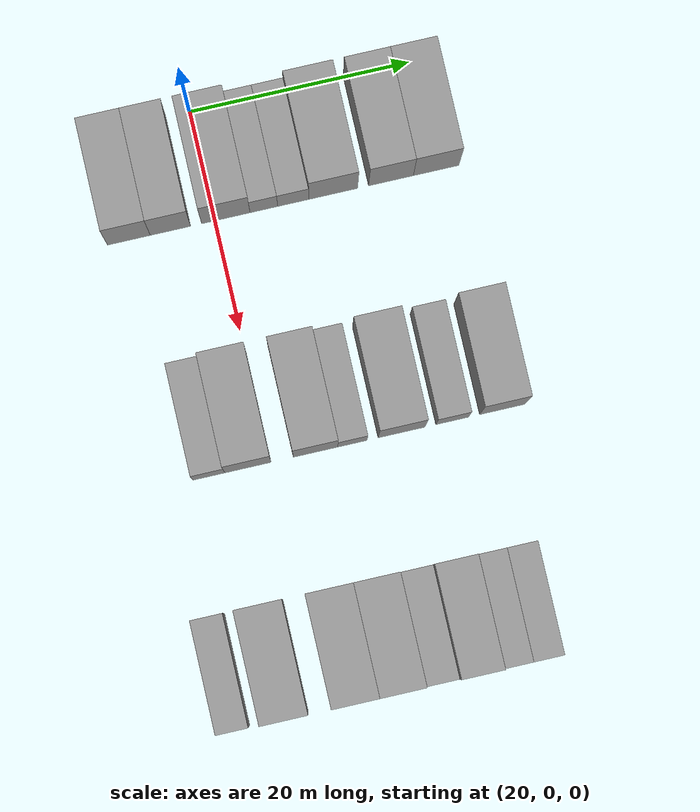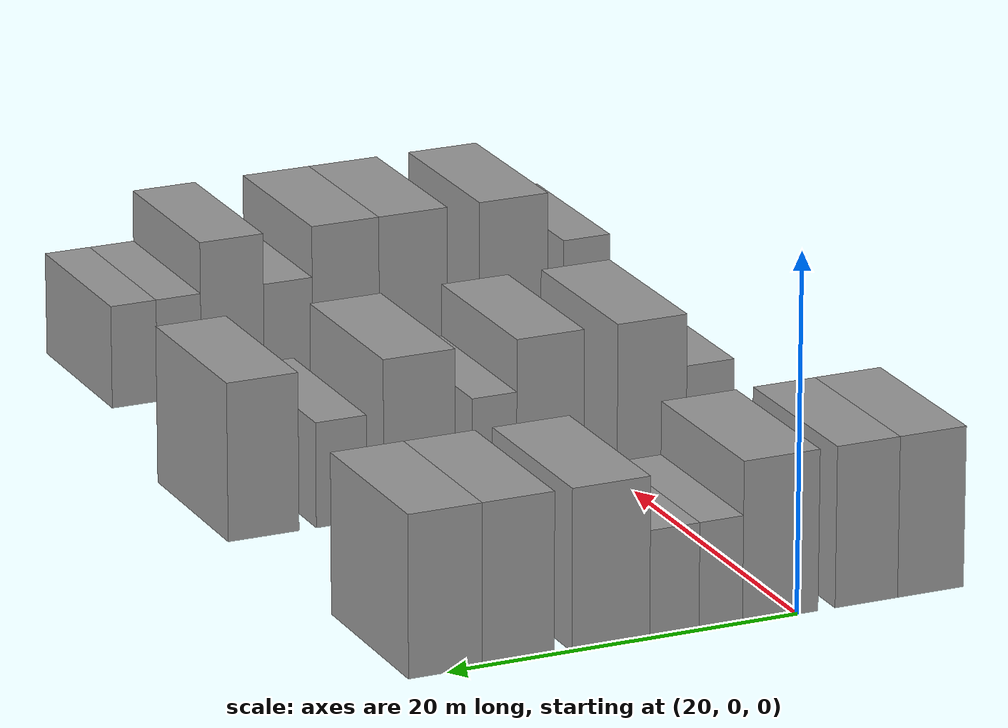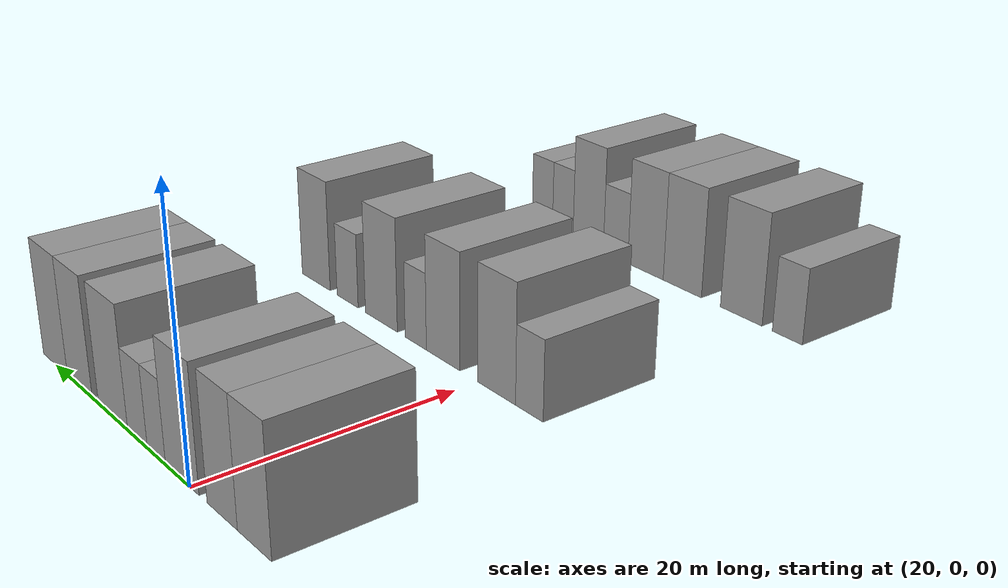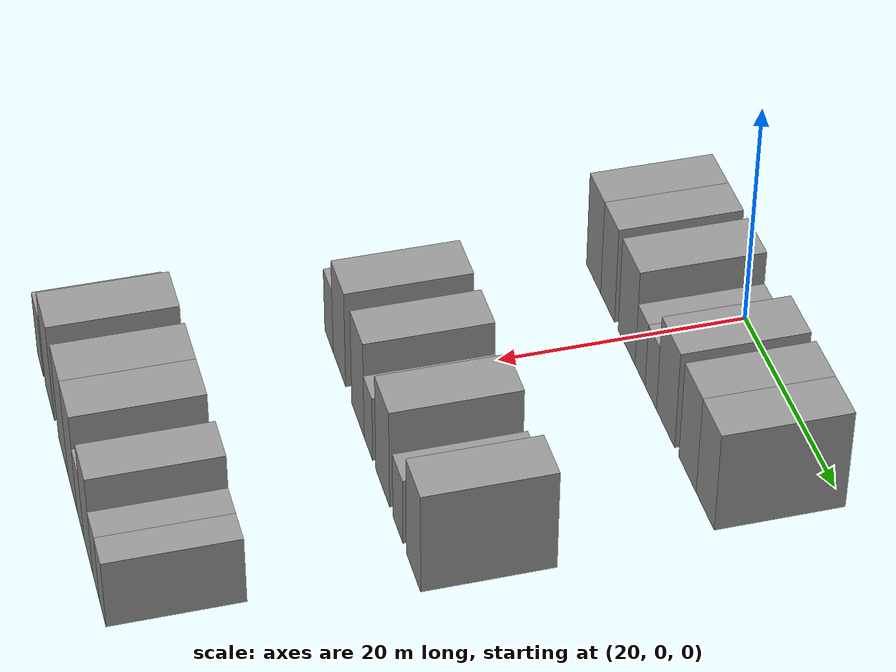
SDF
<sdf version="1.6">
 <world name="default">
  <model name="building_63">
   <static>1</static>
   <pose>25.0000 -7.7786 0 0.000000 0.000000 0.000000</pose>
   <link name="link">
    <pose>0 0 4.50 0 0 0</pose>
    <collision name="collision"><geometry><box><size>10.0000 3.8778 9.0000</size></box></geometry></collision>
    <visual name="visual">
     <cast_shadows>0</cast_shadows>
     <geometry><box><size>10.0000 3.8778 9.0000</size></box></geometry>
     <material>
      <script>
       <uri>model://grey_wall/materials/scripts</uri>
       <uri>model://grey_wall/materials/textures</uri>
       <name>vrc/grey_wall</name>
      </script>
     </material>
    </visual>
   </link>
  </model>
  <model name="building_64">
   <static>1</static>
   <pose>25.0000 -4.0102 0 0.000000 0.000000 0.000000</pose>
   <link name="link">
    <pose>0 0 4.50 0 0 0</pose>
    <collision name="collision"><geometry><box><size>10.0000 3.6590 9.0000</size></box></geometry></collision>
    <visual name="visual">
     <cast_shadows>0</cast_shadows>
     <geometry><box><size>10.0000 3.6590 9.0000</size></box></geometry>
     <material>
      <script>
       <uri>model://grey_wall/materials/scripts</uri>
       <uri>model://grey_wall/materials/textures</uri>
       <name>vrc/grey_wall</name>
      </script>
     </material>
    </visual>
   </link>
  </model>
  <model name="building_65">
   <static>1</static>
   <pose>25.0000 1.0121 0 0.000000 0.000000 0.000000</pose>
   <link name="link">
    <pose>0 0 4.50 0 0 0</pose>
    <collision name="collision"><geometry><box><size>10.0000 4.3856 9.0000</size></box></geometry></collision>
    <visual name="visual">
     <cast_shadows>0</cast_shadows>
     <geometry><box><size>10.0000 4.3856 9.0000</size></box></geometry>
     <material>
      <script>
       <uri>model://grey_wall/materials/scripts</uri>
       <uri>model://grey_wall/materials/textures</uri>
       <name>vrc/grey_wall</name>
      </script>
     </material>
    </visual>
   </link>
  </model>
  <model name="building_66">
   <static>1</static>
   <pose>25.0000 4.4608 0 0.000000 0.000000 0.000000</pose>
   <link name="link">
    <pose>0 0 3.00 0 0 0</pose>
    <collision name="collision"><geometry><box><size>10.0000 2.5119 6.0000</size></box></geometry></collision>
    <visual name="visual">
     <cast_shadows>0</cast_shadows>
     <geometry><box><size>10.0000 2.5119 6.0000</size></box></geometry>
     <material>
      <script>
       <uri>model://grey_wall/materials/scripts</uri>
       <uri>model://grey_wall/materials/textures</uri>
       <name>vrc/grey_wall</name>
      </script>
     </material>
    </visual>
   </link>
  </model>
  <model name="building_67">
   <static>1</static>
   <pose>25.0000 7.1323 0 0.000000 0.000000 0.000000</pose>
   <link name="link">
    <pose>0 0 3.00 0 0 0</pose>
    <collision name="collision"><geometry><box><size>10.0000 2.8311 6.0000</size></box></geometry></collision>
    <visual name="visual">
     <cast_shadows>0</cast_shadows>
     <geometry><box><size>10.0000 2.8311 6.0000</size></box></geometry>
     <material>
      <script>
       <uri>model://grey_wall/materials/scripts</uri>
       <uri>model://grey_wall/materials/textures</uri>
       <name>vrc/grey_wall</name>
      </script>
     </material>
    </visual>
   </link>
  </model>
  <model name="building_68">
   <static>1</static>
   <pose>25.0000 10.7667 0 0.000000 0.000000 0.000000</pose>
   <link name="link">
    <pose>0 0 4.50 0 0 0</pose>
    <collision name="collision"><geometry><box><size>10.0000 4.4375 9.0000</size></box></geometry></collision>
    <visual name="visual">
     <cast_shadows>0</cast_shadows>
     <geometry><box><size>10.0000 4.4375 9.0000</size></box></geometry>
     <material>
      <script>
       <uri>model://grey_wall/materials/scripts</uri>
       <uri>model://grey_wall/materials/textures</uri>
       <name>vrc/grey_wall</name>
      </script>
     </material>
    </visual>
   </link>
  </model>
  <model name="building_69">
   <static>1</static>
   <pose>25.0000 16.0203 0 0.000000 0.000000 0.000000</pose>
   <link name="link">
    <pose>0 0 4.50 0 0 0</pose>
    <collision name="collision"><geometry><box><size>10.0000 4.0698 9.0000</size></box></geometry></collision>
    <visual name="visual">
     <cast_shadows>0</cast_shadows>
     <geometry><box><size>10.0000 4.0698 9.0000</size></box></geometry>
     <material>
      <script>
       <uri>model://grey_wall/materials/scripts</uri>
       <uri>model://grey_wall/materials/textures</uri>
       <name>vrc/grey_wall</name>
      </script>
     </material>
    </visual>
   </link>
  </model>
  <model name="building_70">
   <static>1</static>
   <pose>25.0000 20.1271 0 0.000000 0.000000 0.000000</pose>
   <link name="link">
    <pose>0 0 4.50 0 0 0</pose>
    <collision name="collision"><geometry><box><size>10.0000 4.1437 9.0000</size></box></geometry></collision>
    <visual name="visual">
     <cast_shadows>0</cast_shadows>
     <geometry><box><size>10.0000 4.1437 9.0000</size></box></geometry>
     <material>
      <script>
       <uri>model://grey_wall/materials/scripts</uri>
       <uri>model://grey_wall/materials/textures</uri>
       <name>vrc/grey_wall</name>
      </script>
     </material>
    </visual>
   </link>
  </model>
  <model name="building_186">
   <static>1</static>
   <pose>47.0000 -5.4801 0 0.000000 0.000000 0.000000</pose>
   <link name="link">
    <pose>0 0 3.00 0 0 0</pose>
    <collision name="collision"><geometry><box><size>10.0000 2.8677 6.0000</size></box></geometry></collision>
    <visual name="visual">
     <cast_shadows>0</cast_shadows>
     <geometry><box><size>10.0000 2.8677 6.0000</size></box></geometry>
     <material>
      <script>
       <uri>model://grey_wall/materials/scripts</uri>
       <uri>model://grey_wall/materials/textures</uri>
       <name>vrc/grey_wall</name>
      </script>
     </material>
    </visual>
   </link>
  </model>
  <model name="building_187">
   <static>1</static>
   <pose>47.0000 -1.9641 0 0.000000 0.000000 0.000000</pose>
   <link name="link">
    <pose>0 0 4.50 0 0 0</pose>
    <collision name="collision"><geometry><box><size>10.0000 4.1644 9.0000</size></box></geometry></collision>
    <visual name="visual">
     <cast_shadows>0</cast_shadows>
     <geometry><box><size>10.0000 4.1644 9.0000</size></box></geometry>
     <material>
      <script>
       <uri>model://grey_wall/materials/scripts</uri>
       <uri>model://grey_wall/materials/textures</uri>
       <name>vrc/grey_wall</name>
      </script>
     </material>
    </visual>
   </link>
  </model>
  <model name="building_188">
   <static>1</static>
   <pose>47.0000 4.1217 0 0.000000 0.000000 0.000000</pose>
   <link name="link">
    <pose>0 0 4.50 0 0 0</pose>
    <collision name="collision"><geometry><box><size>10.0000 4.0072 9.0000</size></box></geometry></collision>
    <visual name="visual">
     <cast_shadows>0</cast_shadows>
     <geometry><box><size>10.0000 4.0072 9.0000</size></box></geometry>
     <material>
      <script>
       <uri>model://grey_wall/materials/scripts</uri>
       <uri>model://grey_wall/materials/textures</uri>
       <name>vrc/grey_wall</name>
      </script>
     </material>
    </visual>
   </link>
  </model>
  <model name="building_189">
   <static>1</static>
   <pose>47.0000 7.4444 0 0.000000 0.000000 0.000000</pose>
   <link name="link">
    <pose>0 0 3.00 0 0 0</pose>
    <collision name="collision"><geometry><box><size>10.0000 2.6383 6.0000</size></box></geometry></collision>
    <visual name="visual">
     <cast_shadows>0</cast_shadows>
     <geometry><box><size>10.0000 2.6383 6.0000</size></box></geometry>
     <material>
      <script>
       <uri>model://grey_wall/materials/scripts</uri>
       <uri>model://grey_wall/materials/textures</uri>
       <name>vrc/grey_wall</name>
      </script>
     </material>
    </visual>
   </link>
  </model>
  <model name="building_190">
   <static>1</static>
   <pose>47.0000 11.8732 0 0.000000 0.000000 0.000000</pose>
   <link name="link">
    <pose>0 0 4.50 0 0 0</pose>
    <collision name="collision"><geometry><box><size>10.0000 4.2192 9.0000</size></box></geometry></collision>
    <visual name="visual">
     <cast_shadows>0</cast_shadows>
     <geometry><box><size>10.0000 4.2192 9.0000</size></box></geometry>
     <material>
      <script>
       <uri>model://grey_wall/materials/scripts</uri>
       <uri>model://grey_wall/materials/textures</uri>
       <name>vrc/grey_wall</name>
      </script>
     </material>
    </visual>
   </link>
  </model>
  <model name="building_191">
   <static>1</static>
   <pose>47.0000 16.4602 0 0.000000 0.000000 0.000000</pose>
   <link name="link">
    <pose>0 0 3.00 0 0 0</pose>
    <collision name="collision"><geometry><box><size>10.0000 2.9548 6.0000</size></box></geometry></collision>
    <visual name="visual">
     <cast_shadows>0</cast_shadows>
     <geometry><box><size>10.0000 2.9548 6.0000</size></box></geometry>
     <material>
      <script>
       <uri>model://grey_wall/materials/scripts</uri>
       <uri>model://grey_wall/materials/textures</uri>
       <name>vrc/grey_wall</name>
      </script>
     </material>
    </visual>
   </link>
  </model>
  <model name="building_192">
   <static>1</static>
   <pose>47.0000 20.9953 0 0.000000 0.000000 0.000000</pose>
   <link name="link">
    <pose>0 0 4.50 0 0 0</pose>
    <collision name="collision"><geometry><box><size>10.0000 4.1156 9.0000</size></box></geometry></collision>
    <visual name="visual">
     <cast_shadows>0</cast_shadows>
     <geometry><box><size>10.0000 4.1156 9.0000</size></box></geometry>
     <material>
      <script>
       <uri>model://grey_wall/materials/scripts</uri>
       <uri>model://grey_wall/materials/textures</uri>
       <name>vrc/grey_wall</name>
      </script>
     </material>
    </visual>
   </link>
  </model>
  <model name="building_300">
   <static>1</static>
   <pose>69.0000 -8.2397 0 0.000000 0.000000 0.000000</pose>
   <link name="link">
    <pose>0 0 3.00 0 0 0</pose>
    <collision name="collision"><geometry><box><size>10.0000 2.8853 6.0000</size></box></geometry></collision>
    <visual name="visual">
     <cast_shadows>0</cast_shadows>
     <geometry><box><size>10.0000 2.8853 6.0000</size></box></geometry>
     <material>
      <script>
       <uri>model://grey_wall/materials/scripts</uri>
       <uri>model://grey_wall/materials/textures</uri>
       <name>vrc/grey_wall</name>
      </script>
     </material>
    </visual>
   </link>
  </model>
  <model name="building_301">
   <static>1</static>
   <pose>69.0000 -3.6738 0 0.000000 0.000000 0.000000</pose>
   <link name="link">
    <pose>0 0 4.50 0 0 0</pose>
    <collision name="collision"><geometry><box><size>10.0000 4.2464 9.0000</size></box></geometry></collision>
    <visual name="visual">
     <cast_shadows>0</cast_shadows>
     <geometry><box><size>10.0000 4.2464 9.0000</size></box></geometry>
     <material>
      <script>
       <uri>model://grey_wall/materials/scripts</uri>
       <uri>model://grey_wall/materials/textures</uri>
       <name>vrc/grey_wall</name>
      </script>
     </material>
    </visual>
   </link>
  </model>
  <model name="building_302">
   <static>1</static>
   <pose>69.0000 2.5565 0 0.000000 0.000000 0.000000</pose>
   <link name="link">
    <pose>0 0 4.50 0 0 0</pose>
    <collision name="collision"><geometry><box><size>10.0000 4.2143 9.0000</size></box></geometry></collision>
    <visual name="visual">
     <cast_shadows>0</cast_shadows>
     <geometry><box><size>10.0000 4.2143 9.0000</size></box></geometry>
     <material>
      <script>
       <uri>model://grey_wall/materials/scripts</uri>
       <uri>model://grey_wall/materials/textures</uri>
       <name>vrc/grey_wall</name>
      </script>
     </material>
    </visual>
   </link>
  </model>
  <model name="building_303">
   <static>1</static>
   <pose>69.0000 6.7130 0 0.000000 0.000000 0.000000</pose>
   <link name="link">
    <pose>0 0 4.50 0 0 0</pose>
    <collision name="collision"><geometry><box><size>10.0000 4.0987 9.0000</size></box></geometry></collision>
    <visual name="visual">
     <cast_shadows>0</cast_shadows>
     <geometry><box><size>10.0000 4.0987 9.0000</size></box></geometry>
     <material>
      <script>
       <uri>model://grey_wall/materials/scripts</uri>
       <uri>model://grey_wall/materials/textures</uri>
       <name>vrc/grey_wall</name>
      </script>
     </material>
    </visual>
   </link>
  </model>
  <model name="building_304">
   <static>1</static>
   <pose>69.0000 10.2440 0 0.000000 0.000000 0.000000</pose>
   <link name="link">
    <pose>0 0 3.00 0 0 0</pose>
    <collision name="collision"><geometry><box><size>10.0000 2.9633 6.0000</size></box></geometry></collision>
    <visual name="visual">
     <cast_shadows>0</cast_shadows>
     <geometry><box><size>10.0000 2.9633 6.0000</size></box></geometry>
     <material>
      <script>
       <uri>model://grey_wall/materials/scripts</uri>
       <uri>model://grey_wall/materials/textures</uri>
       <name>vrc/grey_wall</name>
      </script>
     </material>
    </visual>
   </link>
  </model>
  <model name="building_305">
   <static>1</static>
   <pose>69.0000 13.6314 0 0.000000 0.000000 0.000000</pose>
   <link name="link">
    <pose>0 0 4.50 0 0 0</pose>
    <collision name="collision"><geometry><box><size>10.0000 3.8116 9.0000</size></box></geometry></collision>
    <visual name="visual">
     <cast_shadows>0</cast_shadows>
     <geometry><box><size>10.0000 3.8116 9.0000</size></box></geometry>
     <material>
      <script>
       <uri>model://grey_wall/materials/scripts</uri>
       <uri>model://grey_wall/materials/textures</uri>
       <name>vrc/grey_wall</name>
      </script>
     </material>
    </visual>
   </link>
  </model>
  <model name="building_306">
   <static>1</static>
   <pose>69.0000 16.8747 0 0.000000 0.000000 0.000000</pose>
   <link name="link">
    <pose>0 0 3.00 0 0 0</pose>
    <collision name="collision"><geometry><box><size>10.0000 2.6749 6.0000</size></box></geometry></collision>
    <visual name="visual">
     <cast_shadows>0</cast_shadows>
     <geometry><box><size>10.0000 2.6749 6.0000</size></box></geometry>
     <material>
      <script>
       <uri>model://grey_wall/materials/scripts</uri>
       <uri>model://grey_wall/materials/textures</uri>
       <name>vrc/grey_wall</name>
      </script>
     </material>
    </visual>
   </link>
  </model>
  <model name="building_307">
   <static>1</static>
   <pose>69.0000 19.5692 0 0.000000 0.000000 0.000000</pose>
   <link name="link">
    <pose>0 0 3.00 0 0 0</pose>
    <collision name="collision"><geometry><box><size>10.0000 2.7142 6.0000</size></box></geometry></collision>
    <visual name="visual">
     <cast_shadows>0</cast_shadows>
     <geometry><box><size>10.0000 2.7142 6.0000</size></box></geometry>
     <material>
      <script>
       <uri>model://grey_wall/materials/scripts</uri>
       <uri>model://grey_wall/materials/textures</uri>
       <name>vrc/grey_wall</name>
      </script>
     </material>
    </visual>
   </link>
  </model>
 </world>
</sdf>
